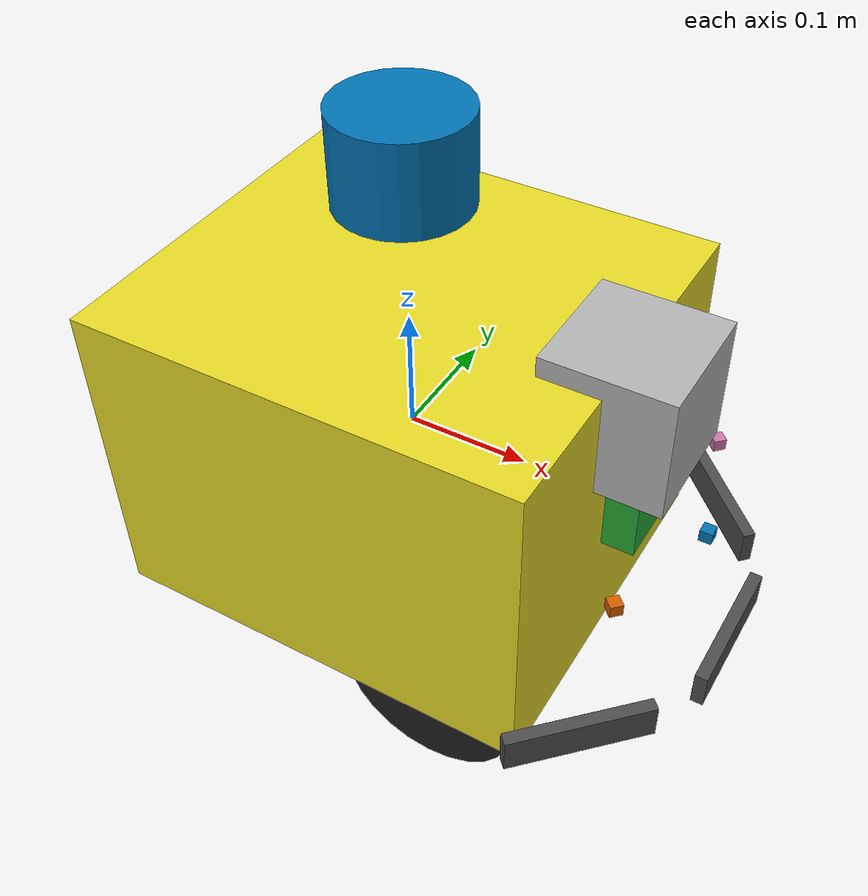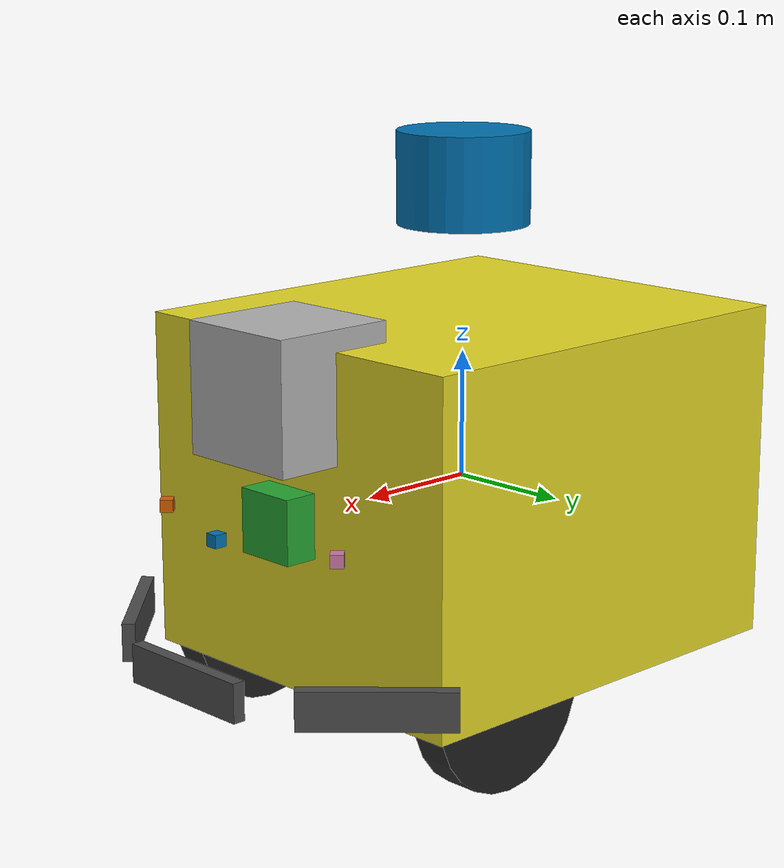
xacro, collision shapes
<?xml version="1.0" encoding="UTF-8"?>
<robot xmlns:xacro="http://www.ros.org/wiki/xacro" name="plato">
    <xacro:include filename="$(find plato_description)/urdf/plato_gazebo.xacro"/>
    <xacro:include filename="$(find plato_description)/urdf/materials.xacro"/>
    <xacro:include filename="$(find plato_description)/urdf/parameters.xacro"/>
    <xacro:include filename="$(find plato_description)/urdf/utils.xacro"/>

    <xacro:include filename="$(find plato_description)/urdf/body_parts/body_box.urdf.xacro"/>
    <body_box name="${base_name}" M="${M}" length_x="${length_x}"
                                  length_y="${length_y}"
                                  length_z="${length_z}">
       <origin xyz="0 0 0" rpy=" 0 0 0"/>
    </body_box>

    <xacro:include filename="$(find plato_description)/urdf/body_parts/wheel.urdf.xacro"/>
    <wheel parent="${base_name}" name="left_wheel" wheel_radius="${wheel_radius}"
                            wheel_width="${wheel_width}"
                            wheel_mass="${wheel_mass}"
                            wheel_effort_limit="${wheel_effort_limit}"
                            wheel_velocity_limit="${wheel_velocity_limit}">
       <origin xyz="${wheel_position_x}
                    ${wheel_distance/2}
                    ${caster_position_z + wheel_radius - caster_radius}" rpy="0 0 0"/>
    </wheel>

    <xacro:include filename="$(find plato_description)/urdf/body_parts/wheel.urdf.xacro"/>
    <wheel parent="${base_name}" name="right_wheel" wheel_radius="${wheel_radius}"
                            wheel_width="${wheel_width}"
                            wheel_mass="${wheel_mass}"
                            wheel_effort_limit="${wheel_effort_limit}"
                            wheel_velocity_limit="${wheel_velocity_limit}">
      <origin xyz="${wheel_position_x}
                   ${-wheel_distance/2}
                   ${caster_position_z + wheel_radius - caster_radius}" rpy="0 0 0"/>
    </wheel>

    <xacro:include filename="$(find plato_description)/urdf/body_parts/caster_wheel.urdf.xacro"/>
    <caster_wheel parent="${base_name}" name="caster_wheel" caster_mass="${caster_mass}"
                                                caster_radius="${caster_radius}">
      <origin xyz="${caster_position_x}
                   ${caster_position_y}
                   ${caster_position_z}" rpy="0 0 0"/>
    </caster_wheel>

    <xacro:include filename="$(find plato_description)/urdf/sensors/VLP-16.urdf.xacro"/>
    <VLP-16 parent="${base_name}" name="velodyne16" topic="/velodyne_points" hz="${v16_hz}" samples="${v16_samples}">
      <origin xyz="${v16_pos_x} ${v16_pos_y} ${v16_pos_z}" rpy="0 0 0" />
    </VLP-16>

    <xacro:include filename="$(find plato_description)/urdf/sensors/camera.urdf.xacro"/>
    <camera_sensor xyz="${camera_pos_x} ${camera_pos_y} ${camera_pos_z}" rpy="0 0 0" parent="${base_name}"></camera_sensor>

    <xacro:include filename="$(find plato_description)/urdf/sensors/hokuyo.urdf.xacro"/>
    <hokuyo_sensor xyz="${hokuyo_pos_x} ${hokuyo_pos_y} ${hokuyo_pos_z}" rpy="0 0 0" parent="${base_name}"></hokuyo_sensor>

    <xacro:include filename="$(find plato_description)/urdf/sensors/imu.urdf.xacro"/>
    <imu_sensor xyz="${imu_pos_x} ${imu_pos_y} ${imu_pos_z}" rpy="0 0 0" parent="${base_name}"></imu_sensor>

    <xacro:include filename="$(find plato_description)/urdf/sensors/bumper.urdf.xacro"/>
    <bumper parent="${base_name}" name="center_bumper" topic="center_bumper" col_num="3">
      <origin xyz="0.28 0 -0.1" rpy="0 0 0" />
    </bumper>

    <xacro:include filename="$(find plato_description)/urdf/sensors/bumper.urdf.xacro"/>
    <bumper parent="${base_name}" name="right_bumper" topic="right_bumper" col_num="9">
      <origin xyz="0.22 ${-wheel_distance/2} -0.1" rpy="0 0 ${-M_PI/4}" />
    </bumper>

    <xacro:include filename="$(find plato_description)/urdf/sensors/bumper.urdf.xacro"/>
    <bumper parent="${base_name}" name="left_bumper" topic="left_bumper" col_num="7">
      <origin xyz="0.22 ${wheel_distance/2} -0.1" rpy="0 0 ${M_PI/4}" />
    </bumper>

    <xacro:include filename="$(find plato_description)/urdf/sensors/sonar.urdf.xacro"/>
    <sonar_sensor parent="${base_name}" name="center_sonar" ros_topic="/center_sonar"
                  update_rate="10" min_range="0.3" max_range="2"
                  field_of_view="56" ray_count="2" >
      <origin xyz="0.25 0 0" rpy="0 0 0" />
    </sonar_sensor>

    <xacro:include filename="$(find plato_description)/urdf/sensors/sonar.urdf.xacro"/>
    <sonar_sensor parent="${base_name}" name="left_sonar" ros_topic="/left_sonar"
                  update_rate="10" min_range="0.3" max_range="2"
                  field_of_view="56" ray_count="2" >
      <origin xyz="0.22 ${(-wheel_distance/2)+0.04} 0" rpy="0 0 ${-M_PI/4}"/>
    </sonar_sensor>

    <xacro:include filename="$(find plato_description)/urdf/sensors/sonar.urdf.xacro"/>
    <sonar_sensor parent="${base_name}" name="right_sonar" ros_topic="/right_sonar"
                  update_rate="10" min_range="0.3" max_range="2"
                  field_of_view="56" ray_count="2" >
      <origin xyz="0.22 ${(wheel_distance/2)-0.04} 0" rpy="0 0 ${M_PI/4}"/>
    </sonar_sensor>

</robot>

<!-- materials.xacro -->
<robot>

    <material name="Plato/Black">
        <color rgba="0.0 0.0 0.0 1.0"/>
    </material>

    <material name="Plato/Blue">
        <color rgba="0.0 0.0 0.8 1.0"/>
    </material>

    <material name="Plato/Green">
        <color rgba="0.0 0.8 0.0 1.0"/>
    </material>

    <material name="Plato/Grey">
        <color rgba="0.2 0.2 0.2 1.0"/>
    </material>

    <material name="Plato/Orange">
        <color rgba="${255/255} ${108/255} ${10/255} 1.0"/>
    </material>

    <material name="Plato/Brown">
        <color rgba="${222/255} ${207/255} ${195/255} 1.0"/>
    </material>

    <material name="Plato/Red">
        <color rgba="0.8 0.0 0.0 1.0"/>
    </material>

    <material name="Plato/White">
        <color rgba="1.0 1.0 1.0 1.0"/>
    </material>

</robot>

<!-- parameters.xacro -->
<robot xmlns:xacro="http://www.ros.org/wiki/xacro">

  <!-- Chassis properties -->
  <xacro:property name="base_name" value="chassis"/>
  <xacro:property name="M" value="5"/>
  <xacro:property name="length_x" value="0.357"/>
  <xacro:property name="length_y" value="0.313"/>
  <xacro:property name="length_z" value="0.267"/>
  <!-- Differential-drive wheels properties -->
  <xacro:property name="wheel_radius" value="0.0715"/>
  <xacro:property name="wheel_width" value="0.028"/>
  <xacro:property name="wheel_mass" value="0.1"/>
  <xacro:property name="wheel_position_x" value="0.1"/>
  <xacro:property name="wheel_distance" value="0.27"/>
  <xacro:property name="wheel_effort_limit" value="5"/>
  <xacro:property name="wheel_velocity_limit" value="10"/>
  <!-- Caster wheel properties -->
  <xacro:property name="caster_mass" value="0.1"/>
  <xacro:property name="caster_radius" value="0.0425"/>
  <xacro:property name="caster_position_x" value="-0.1"/>
  <xacro:property name="caster_position_y" value="0"/>
  <xacro:property name="caster_position_z" value="-0.15"/>
  <!-- Velodyne16 properties -->
  <xacro:property name="v16_pos_x" value="0"/>
  <xacro:property name="v16_pos_y" value="0"/>
  <xacro:property name="v16_pos_z" value="0.2"/>
  <xacro:property name="v16_hz" value="10"/>
  <xacro:property name="v16_samples" value="440"/>
  <!-- Camera properties -->
  <xacro:property name="camera_pos_x" value="0.18"/>
  <xacro:property name="camera_pos_y" value="0"/>
  <xacro:property name="camera_pos_z" value="0"/>
  <!-- Hokuyo properties -->
  <xacro:property name="hokuyo_pos_x" value="0.18"/>
  <xacro:property name="hokuyo_pos_y" value="0"/>
  <xacro:property name="hokuyo_pos_z" value="0.1"/>
  <!-- IMU properties -->
  <xacro:property name="imu_pos_x" value="0.18"/>
  <xacro:property name="imu_pos_y" value="0"/>
  <xacro:property name="imu_pos_z" value="0.1"/>
</robot>

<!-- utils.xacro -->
<robot xmlns:xacro="http://www.ros.org/wiki/xacro">
  <xacro:property name="M_PI" value="3.1415926535897931" />

  <macro name="cylinder_inertia" params="m r h">
  <inertia  ixx="${m*(3*r*r+h*h)/12}" ixy = "0" ixz = "0"
            iyy="${m*(3*r*r+h*h)/12}" iyz = "0"
            izz="${m*r*r/2}" />
  </macro>

  <macro name="parallelepiped_inertia" params="m x_dim y_dim z_dim">
  <inertia  ixx="${(1/3) * m * (z_dim*z_dim + y_dim*y_dim)}" ixy="0" ixz="0"
            iyy="${(1/3) * m * (z_dim*z_dim + x_dim*x_dim)}" iyz="0"
            izz="${(1/3) * m * (x_dim*x_dim + y_dim*y_dim)}"/>
  </macro>

  <macro name="sphere_inertia" params="m r">
  <inertia ixx="${(2/5) * m * r * r}" ixy="0" ixz="0"
           iyy="${(2/5) * m * r * r}" iyz="0"
           izz="${(2/5) * m * r * r}"/>
  </macro>

</robot>

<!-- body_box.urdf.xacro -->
<robot xmlns:xacro="http://www.ros.org/wiki/xacro">
  <xacro:macro name="body_box" params="name M *origin length_x length_y length_z">

    <link name="${name}">
        <inertial>
            <mass value="${M}"/>
            <xacro:insert_block name="origin" />
            <parallelepiped_inertia m="${M}" x_dim="${length_x}"
                                  y_dim="${length_y}"
                                  z_dim="${length_z}"/>
        </inertial>
        <collision name="${name}_collision">
            <geometry>
                <box size="${length_x}
                           ${length_y}
                           ${length_z}"/>
            </geometry>
        </collision>
        <visual name="${name}_visual">
            <xacro:insert_block name="origin" />
            <geometry>
                <box size="${length_x}
                           ${length_y}
                           ${length_z}"/>
            </geometry>
        </visual>
    </link>

  </xacro:macro>
</robot>

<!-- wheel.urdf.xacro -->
<robot xmlns:xacro="http://www.ros.org/wiki/xacro">
  <xacro:macro name="wheel" params="name parent *origin wheel_radius wheel_width wheel_mass wheel_effort_limit wheel_velocity_limit">

    <link name="${name}">
        <collision name="${name}_collision">
            <origin xyz="0 0 0" rpy="0 1.5707 1.5707"/>
            <geometry>
                <cylinder radius="${wheel_radius}" length="${wheel_width}"/>
            </geometry>
        </collision>
        <visual name="${name}_visual">
            <origin xyz="0 0 0" rpy="0 1.5707 1.5707"/>
            <geometry>
                <cylinder radius="${wheel_radius}" length="${wheel_width}"/>
            </geometry>
        </visual>
        <inertial>
            <origin xyz="0 0 0" rpy="0 1.5707 1.5707"/>
            <mass value="${wheel_mass}"/>
            <cylinder_inertia m="${wheel_mass}" r="${wheel_radius}" h="${wheel_width}"/>
        </inertial>
    </link>

    <joint name="${name}_hinge" type="continuous">
        <xacro:insert_block name="origin" />
        <parent link="${parent}"/>
        <child link="${name}"/>
        <axis xyz="0 1 0"/>
        <limit effort="${wheel_effort_limit}" velocity="${wheel_velocity_limit}"/>
        <joint_properties damping="0.0" friction="0.0"/>
    </joint>

    <gazebo reference="${name}">
      <mu1 value="1.0"/>
      <mu2 value="1.0"/>
      <kp  value="10000.0" />
      <kd>100.0</kd>
      <minDepth>0.0001</minDepth>
      <maxVel>1.0</maxVel>

      <material>Gazebo/FlatBlack</material>
    </gazebo>

  </xacro:macro>
</robot>

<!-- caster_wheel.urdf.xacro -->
<robot xmlns:xacro="http://www.ros.org/wiki/xacro">
  <xacro:macro name="caster_wheel" params="name parent *origin caster_mass caster_radius">

    <link name="${name}">
      <inertial>
          <mass value="${caster_mass}"/>
          <origin xyz="0 0 0" rpy=" 0 0 0"/>
          <sphere_inertia m="${caster_mass}" r="${caster_radius}"/>
      </inertial>
      <collision name="${name}_collision">
          <origin xyz="0 0 0" rpy=" 0 0 0"/>
          <geometry>
              <sphere radius="${caster_radius}"/>
          </geometry>
      </collision>
      <visual name="${name}_visual">
          <origin xyz="0 0 0" rpy=" 0 0 0"/>
          <geometry>
              <sphere radius="${caster_radius}"/>
          </geometry>
      </visual>
    </link>

    <joint name="${name}_joint" type="fixed">
        <parent link="${parent}"/>
        <child link="${name}"/>
        <xacro:insert_block name="origin" />
    </joint>

    <gazebo reference="${name}">
      <mu1>0.0</mu1>
      <mu2>0.0</mu2>

      <kp>100000000.0</kp>
      <kd>1.0</kd>
      <minDepth>0.0001</minDepth>
      <maxVel>1.0</maxVel>

    </gazebo>

  </xacro:macro>
</robot>

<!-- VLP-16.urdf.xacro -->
<robot xmlns:xacro="http://www.ros.org/wiki/xacro" name="VLP-16">
  <xacro:property name="M_PI" value="3.1415926535897931" />
  <xacro:macro name="VLP-16" params="*origin parent:=base_link name:=velodyne topic:=/velodyne_points hz:=10 lasers:=16 samples:=1875 collision_range:=0.3 min_range:=0.9 max_range:=130.0 noise:=0.008 min_angle:=-${M_PI} max_angle:=${M_PI}">

    <joint name="${name}_base_mount_joint" type="fixed">
      <xacro:insert_block name="origin" />
      <parent link="${parent}"/>
      <child link="${name}_base_link"/>
    </joint>

    <link name="${name}_base_link">
      <inertial>
        <mass value="0.83"/>
        <origin xyz="0 0 0.03585"/>
        <inertia ixx="${(0.83 * (3.0*0.0516*0.0516 + 0.0717*0.0717)) / 12.0}" ixy="0" ixz="0"          iyy="${(0.83 * (3.0*0.0516*0.0516 + 0.0717*0.0717)) / 12.0}" iyz="0"          izz="${0.5 * 0.83 * (0.0516*0.0516)}"/>
      </inertial>
      <visual>
        <geometry>
          <mesh filename="package://plato_description/meshes/VLP16_base_1.dae" />
        </geometry>
      </visual>
      <visual>
        <geometry>
          <mesh filename="package://plato_description/meshes/VLP16_base_2.dae" />
        </geometry>
      </visual>
      <collision>
        <origin rpy="0 0 0" xyz="0 0 0.03585"/>
        <geometry>
          <cylinder radius="0.0516" length="0.0717"/>
        </geometry>
      </collision>
    </link>

    <joint name="${name}_base_scan_joint" type="fixed" >
      <origin xyz="0 0 0.0377" rpy="0 0 0" />
      <parent link="${name}_base_link" />
      <child link="${name}"/>
    </joint>

    <link name="${name}">
      <inertial>
        <mass value="0.01"/>
        <origin xyz="0 0 0"/>
        <inertia ixx="1e-7" ixy="0" ixz="0" iyy="1e-7" iyz="0" izz="1e-7"/>
      </inertial>
      <visual>
        <origin xyz="0 0 -0.0377" />
        <geometry>
          <mesh filename="package://plato_description/meshes/VLP16_scan.dae" />
        </geometry>
      </visual>
    </link>

    <!-- Gazebo requires the velodyne_gazebo_plugins package -->
    <gazebo reference="${name}">
      <sensor type="ray" name="${name}-VLP16">
        <pose>0 0 0 0 0 0</pose>
        <visualize>false</visualize>
        <update_rate>${hz}</update_rate>
        <ray>
          <scan>
            <horizontal>
              <samples>${samples}</samples>
              <resolution>1</resolution>
              <min_angle>${min_angle}</min_angle>
              <max_angle>${max_angle}</max_angle>
            </horizontal>
            <vertical>
              <samples>${lasers}</samples>
              <resolution>1</resolution>
              <min_angle>-${15.0*M_PI/180.0}</min_angle>
              <max_angle> ${15.0*M_PI/180.0}</max_angle>
            </vertical>
          </scan>
          <range>
            <min>${collision_range}</min>
            <max>${max_range+1}</max>
            <resolution>0.001</resolution>
          </range>
          <noise>
            <type>gaussian</type>
            <mean>0.0</mean>
            <stddev>0.0</stddev>
          </noise>
        </ray>
        <plugin name="gazebo_ros_laser_controller" filename="libgazebo_ros_velodyne_laser.so">
          <topicName>${topic}</topicName>
          <frameName>${name}</frameName>
          <min_range>${min_range}</min_range>
          <max_range>${max_range}</max_range>
          <gaussianNoise>${noise}</gaussianNoise>
        </plugin>
      </sensor>
    </gazebo>
  </xacro:macro>
</robot>

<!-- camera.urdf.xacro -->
<robot xmlns:xacro="http://www.ros.org/wiki/xacro" name="camera">
    <xacro:include filename="$(find plato_description)/urdf/materials.xacro"/>
    <xacro:property name="cameraSize" value="0.05"/>
    <xacro:property name="cameraMass" value="0.1"/>

    <xacro:macro name="camera_sensor" params="xyz rpy parent">

        <joint name="camera_joint" type="fixed">
            <axis xyz="0 1 0"/>
            <origin xyz="${xyz}" rpy="${rpy}"/>
            <parent link="${parent}"/>
            <child link="camera"/>
        </joint>

        <link name="camera">
            <collision>
                <origin xyz="0 0 0" rpy="0 0 0"/>
                <geometry>
                    <box size="${cameraSize} ${cameraSize} ${cameraSize}"/>
                </geometry>
            </collision>
            <visual>
                <origin xyz="0 0 0" rpy="0 0 0"/>
                <geometry>
                    <box size="${cameraSize} ${cameraSize} ${cameraSize}"/>
                </geometry>
                <material name="green"/>
            </visual>
            <inertial>
                <mass value="${cameraMass}"/>
                <origin xyz="0 0 0" rpy="0 0 0"/>
                <box_inertia m="${cameraMass}" x="${cameraSize}" y="${cameraSize}" z="${cameraSize}"/>
                <inertia ixx="1e-6" ixy="0" ixz="0" iyy="1e-6" iyz="0" izz="1e-6"/>
            </inertial>
        </link>

        <gazebo reference="camera">
            <material>Plato/Green</material>
            <sensor type="camera" name="camera1">
                <update_rate>30.0</update_rate>
                <camera name="head">
                    <horizontal_fov>1.3962634</horizontal_fov>
                    <image>
                        <width>800</width>
                        <height>800</height>
                        <format>R8G8B8</format>
                    </image>
                    <clip>
                        <near>0.02</near>
                        <far>300</far>
                    </clip>
                </camera>
                <plugin name="camera_controller" filename="libgazebo_ros_camera.so">
                    <alwaysOn>true</alwaysOn>
                    <updateRate>0.0</updateRate>
                    <cameraName>plato/camera1</cameraName>
                    <imageTopicName>image_raw</imageTopicName>
                    <cameraInfoTopicName>camera_info</cameraInfoTopicName>
                    <frameName>camera</frameName>
                    <hackBaseline>0.07</hackBaseline>
                    <distortionK1>0.0</distortionK1>
                    <distortionK2>0.0</distortionK2>
                    <distortionK3>0.0</distortionK3>
                    <distortionT1>0.0</distortionT1>
                    <distortionT2>0.0</distortionT2>
                </plugin>
            </sensor>
        </gazebo>

    </xacro:macro>

</robot>

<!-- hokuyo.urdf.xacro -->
<robot xmlns:xacro="http://www.ros.org/wiki/xacro" name="hokuyo">

    <xacro:macro name="hokuyo_sensor" params="xyz rpy parent">

        <joint name="hokuyo_joint" type="fixed">
            <axis xyz="0 1 0"/>
            <origin xyz="${xyz}" rpy="${rpy}"/>
            <parent link="${parent}"/>
            <child link="hokuyo"/>
        </joint>

        <link name="hokuyo">
            <collision>
                <origin xyz="0 0 0" rpy="0 0 0"/>
                <geometry>
                    <box size="0.1 0.1 0.1"/>
                </geometry>
            </collision>
            <visual>
                <origin xyz="0 0 0" rpy="0 0 0"/>
                <geometry>
                    <mesh filename="package://plato_description/meshes/hokuyo.dae"/>
                </geometry>
            </visual>
            <inertial>
                <mass value="1e-5"/>
                <origin xyz="0 0 0" rpy="0 0 0"/>
                <inertia ixx="1e-6" ixy="0" ixz="0" iyy="1e-6" iyz="0" izz="1e-6"/>
            </inertial>
        </link>

        <gazebo reference="hokuyo">
            <sensor type="ray" name="head_hokuyo_sensor">
                <pose>0 0 0 0 0 0</pose>
                <visualize>true</visualize>
                <update_rate>40</update_rate>
                <ray>
                    <scan>
                        <horizontal>
                            <samples>720</samples>
                            <resolution>1</resolution>
                            <min_angle>-1.570796</min_angle>
                            <max_angle>1.570796</max_angle>
                        </horizontal>
                    </scan>
                    <range>
                        <min>0.10</min>
                        <max>30.0</max>
                        <resolution>0.01</resolution>
                    </range>
                    <noise>
                        <type>gaussian</type>
                        <mean>0.0</mean>
                        <stddev>0.01</stddev>
                    </noise>
                </ray>
                <plugin name="gazebo_ros_head_hokuyo_controller" filename="libgazebo_ros_laser.so">
                    <topicName>plato/laser/scan</topicName>
                    <frameName>hokuyo</frameName>
                </plugin>
            </sensor>
        </gazebo>

    </xacro:macro>

</robot>

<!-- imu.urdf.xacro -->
<robot xmlns:xacro="http://www.ros.org/wiki/xacro" name="plato">

    <xacro:macro name="imu_sensor" params="xyz rpy parent">
        <joint name="imu_sensor_joint" type="fixed">
            <axis xyz="0 0 1"/>
            <origin xyz="${xyz}" rpy="${rpy}"/>
            <parent link="${parent}"/>
            <child link="imu_sensor_link"/>
        </joint>

        <link name="imu_sensor_link">
            <collision>
                <origin xyz="0 0 0" rpy="0 0 0"/>
                <geometry>
                    <box size="0.02 0.02 0.02"/>
                </geometry>
            </collision>
            <visual>
                <origin xyz="0 0 0" rpy="0 0 0"/>
                <geometry>
                    <box size="0.02 0.02 0.02"/>
                </geometry>
                <material name="Plato/Red"/>
            </visual>
            <inertial>
                <mass value="0.001"/>
                <origin xyz="0 0 0" rpy="0 0 0"/>
                <inertia ixx="0.00000015" ixy="0" ixz="0" iyy="0.00000015" iyz="0" izz="0.00000015"/>
            </inertial>
        </link>

        <gazebo reference="imu_sensor_link">
            <gravity>true</gravity>
            <sensor name="imu_sensor" type="imu">
                <always_on>true</always_on>
                <update_rate>100</update_rate>
                <visualize>true</visualize>
                <topic>__default_topic__</topic>
                <plugin filename="libgazebo_ros_imu_sensor.so" name="imu_plugin">
                    <topicName>plato/imu_data</topicName>
                    <bodyName>imu_link</bodyName>
                    <updateRateHZ>10.0</updateRateHZ>
                    <gaussianNoise>0.0</gaussianNoise>
                    <xyzOffset>0 0 0</xyzOffset>
                    <rpyOffset>0 0 0</rpyOffset>
                    <frameName>imu_sensor_link</frameName>
                </plugin>
                <pose>0 0 0 0 0 0</pose>
            </sensor>
        </gazebo>

    </xacro:macro>

</robot>

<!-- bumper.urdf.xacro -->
<robot xmlns:xacro="http://www.ros.org/wiki/xacro" name="bumper">
  <xacro:macro name="bumper" params="*origin name:=bumper parent:=base_link topic:=/bumper_value col_num:=3" >

    <joint name="${name}_base_joint" type="fixed">
      <xacro:insert_block name="origin" />
      <parent link="${parent}"/>
      <child link="${name}"/>
    </joint>

    <link name="${name}">
      <inertial>
        <mass value="0.01" />
        <inertia ixx="0.01" ixy="0.0" ixz="0.0" iyy="0.01" iyz="0.0" izz="0.01" />
      </inertial>
      <visual>
        <origin xyz="0 0 0" rpy="0 0 0" />
        <geometry>
          <box size="0.01 0.115 0.03"/>
        </geometry>
        <material name="DarkGrey"/>
      </visual>
      <collision name="${name}">
        <origin xyz="0 0 0" rpy="0 0 0" />
        <geometry>
          <box size="0.01 0.115 0.03"/>
        </geometry>
      </collision>
    </link>

    <gazebo reference="${name}">
      <selfCollide>false</selfCollide>
      <sensor type="contact" name="${name}_collision_sensor">
        <always_on>true</always_on>
        <update_rate>30.0</update_rate>
        <contact>
          <collision>${parent}_fixed_joint_lump__${name}_collision_${col_num}</collision>
        </contact>
        <plugin name="${name}_gazebo_ros_bumper_controller" filename="libgazebo_ros_bumper.so">
          <bumperTopicName>${topic}</bumperTopicName>
          <frameName>${name}</frameName>
        </plugin>
      </sensor>
    </gazebo>
  </xacro:macro>
</robot>

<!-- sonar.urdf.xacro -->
<robot xmlns:xacro="http://www.ros.org/wiki/xacro">
  <xacro:macro name="sonar_sensor" params="name parent *origin ros_topic update_rate min_range max_range field_of_view ray_count">
    <joint name="${name}_joint" type="fixed">
      <xacro:insert_block name="origin" />
      <parent link="${parent}"/>
      <child link="${name}_link"/>
    </joint>

    <link name="${name}_link">
      <inertial>
        <mass value="0.001" />
        <origin xyz="0 0 0" rpy="0 0 0" />
        <inertia ixx="0.000000017" ixy="0" ixz="0" iyy="0.000000017" iyz="0" izz="0.000000017" />
      </inertial>
      <visual>
        <origin xyz="0 0 0" rpy="0 0 0" />
        <geometry>
          <mesh filename="package://plato_description/meshes/max_sonar_ez4.dae"/>
        </geometry>
      </visual>
      <collision>
        <origin xyz="0 0 0" rpy="0 0 0" />
        <geometry>
          <box size="0.01 0.01 0.01" />
        </geometry>
      </collision>
    </link>

    <gazebo reference="${name}_link">
      <sensor type="ray" name="${name}">
        <always_on>true</always_on>
        <update_rate>${update_rate}</update_rate>
        <pose>0 0 0 0 0 0</pose>
        <visualize>false</visualize>
        <ray>
          <scan>
            <horizontal>
              <samples>${ray_count}</samples>
              <resolution>1</resolution>
              <min_angle>-${field_of_view/2}</min_angle>
              <max_angle> ${field_of_view/2}</max_angle>
            </horizontal>
            <vertical>
              <samples>${ray_count}</samples>
              <resolution>1</resolution>
              <min_angle>-${field_of_view/2}</min_angle>
              <max_angle> ${field_of_view/2}</max_angle>
            </vertical>
          </scan>
          <range>
            <min>${min_range}</min>
            <max>${max_range}</max>
            <resolution>0.01</resolution>
          </range>
        </ray>
        <plugin name="gazebo_ros_${name}_controller" filename="libhector_gazebo_ros_sonar.so">
          <gaussianNoise>0.005</gaussianNoise>
          <topicName>${ros_topic}</topicName>
          <frameId>${name}_link</frameId>
        </plugin>
      </sensor>
    </gazebo>
  </xacro:macro>
</robot>
